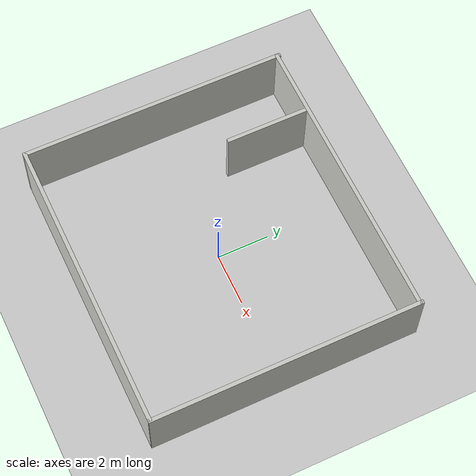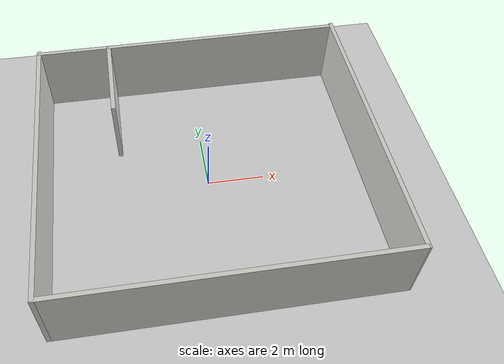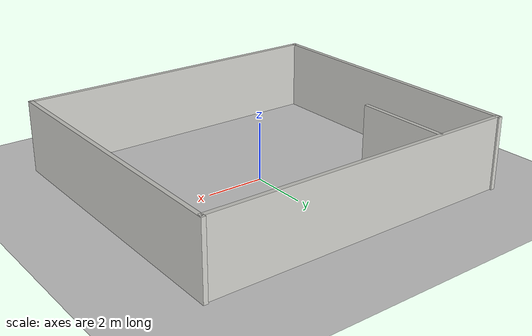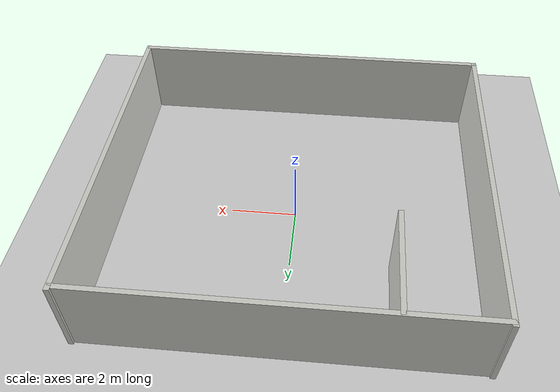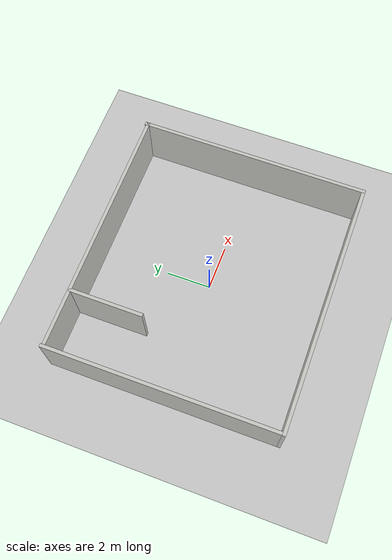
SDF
<sdf version="1.6">
 <world name="default">
  <light name="sun" type="directional">
   <pose>0 0 10 0 -0 0</pose>
   <diffuse>0.8 0.8 0.8 1</diffuse>
   <specular>0.1 0.1 0.1 1</specular>
   <attenuation>
    <range>1000</range>
    <constant>0.9</constant>
    <linear>0.01</linear>
    <quadratic>0.001</quadratic>
   </attenuation>
   <direction>-0.5 0.5 -1</direction>
  </light>
  <model name="ground_plane">
   <static>1</static>
   <link name="link">
    <collision name="collision">
     <geometry><plane><normal>0 0 1</normal><size>100 100</size></plane></geometry>
     <surface><friction><ode><mu>100</mu><mu2>50</mu2></ode></friction></surface>
    </collision>
    <visual name="visual">
     <cast_shadows>0</cast_shadows>
     <geometry><plane><normal>0 0 1</normal><size>100 100</size></plane></geometry>
     <material>
      <script><uri>file://media/materials/scripts/gazebo.material</uri><name>Gazebo/Grey</name></script>
     </material>
    </visual>
   </link>
  </model>
  <gravity>0 0 -9.8</gravity>
  <magnetic_field>6e-06 2.3e-05 -4.2e-05</magnetic_field>
  <atmosphere type="adiabatic"/>
  <physics name="default_physics" default="0" type="ode">
   <max_step_size>0.001</max_step_size>
   <real_time_factor>1</real_time_factor>
   <real_time_update_rate>1000</real_time_update_rate>
  </physics>
  <scene><ambient>0.4 0.4 0.4 1</ambient><background>0.7 0.7 0.7 1</background><shadows>1</shadows></scene>
  <spherical_coordinates>
   <surface_model>EARTH_WGS84</surface_model>
   <latitude_deg>0</latitude_deg>
   <longitude_deg>0</longitude_deg>
   <elevation>0</elevation>
   <heading_deg>0</heading_deg>
  </spherical_coordinates>
  <model name="plant">
   <link name="Wall_2">
    <pose>0 -5.0615 0 0 -0 3.14159</pose>
    <visual name="Wall_2_Visual">
     <pose>0 0 1.25 0 -0 0</pose>
     <geometry><box><size>11.227 0.15 2.5</size></box></geometry>
     <material>
      <script><uri>file://media/materials/scripts/gazebo.material</uri><name>Gazebo/CeilingTiled</name></script>
      <ambient>1 1 1 1</ambient>
      <diffuse>1 1 1 1</diffuse>
      <specular>0 0 0 1</specular>
      <emissive>0 0 0 1</emissive>
     </material>
    </visual>
    <collision name="Wall_2_Collision">
     <pose>0 0 1.25 0 -0 0</pose>
     <geometry><box><size>11.227 0.15 2.5</size></box></geometry>
     <surface>
      <friction>
       <ode><mu>1</mu><mu2>1</mu2><fdir1>0 0 0</fdir1><slip1>0</slip1><slip2>0</slip2></ode>
       <torsional>
        <coefficient>1</coefficient>
        <patch_radius>0</patch_radius>
        <surface_radius>0</surface_radius>
        <use_patch_radius>1</use_patch_radius>
        <ode><slip>0</slip></ode>
       </torsional>
      </friction>
      <bounce><restitution_coefficient>0</restitution_coefficient><threshold>1e+06</threshold></bounce>
      <contact>
       <collide_without_contact>0</collide_without_contact>
       <collide_without_contact_bitmask>1</collide_without_contact_bitmask>
       <collide_bitmask>1</collide_bitmask>
       <ode>
        <soft_cfm>0</soft_cfm>
        <soft_erp>0.2</soft_erp>
        <kp>1e+13</kp>
        <kd>1</kd>
        <max_vel>0.01</max_vel>
        <min_depth>0</min_depth>
       </ode>
       <bullet>
        <split_impulse>1</split_impulse>
        <split_impulse_penetration_threshold>-0.01</split_impulse_penetration_threshold>
        <soft_cfm>0</soft_cfm>
        <soft_erp>0.2</soft_erp>
        <kp>1e+13</kp>
        <kd>1</kd>
       </bullet>
      </contact>
     </surface>
    </collision>
   </link>
   <link name="Wall_2_clone">
    <pose>0.0225 5.0055 0 0 -0 3.14159</pose>
    <visual name="Wall_2_Visual">
     <pose>0 0 1.25 0 -0 0</pose>
     <geometry><box><size>11.227 0.15 2.5</size></box></geometry>
     <material>
      <script><uri>file://media/materials/scripts/gazebo.material</uri><name>Gazebo/CeilingTiled</name></script>
      <ambient>1 1 1 1</ambient>
      <diffuse>1 1 1 1</diffuse>
      <specular>0 0 0 1</specular>
      <emissive>0 0 0 1</emissive>
      <shader type="pixel"/>
     </material>
    </visual>
    <collision name="Wall_2_Collision">
     <pose>0 0 1.25 0 -0 0</pose>
     <geometry><box><size>11.227 0.15 2.5</size></box></geometry>
     <surface>
      <friction>
       <ode><mu>1</mu><mu2>1</mu2><fdir1>0 0 0</fdir1><slip1>0</slip1><slip2>0</slip2></ode>
       <torsional>
        <coefficient>1</coefficient>
        <patch_radius>0</patch_radius>
        <surface_radius>0</surface_radius>
        <use_patch_radius>1</use_patch_radius>
        <ode><slip>0</slip></ode>
       </torsional>
      </friction>
      <bounce><restitution_coefficient>0</restitution_coefficient><threshold>1e+06</threshold></bounce>
      <contact>
       <collide_without_contact>0</collide_without_contact>
       <collide_without_contact_bitmask>1</collide_without_contact_bitmask>
       <collide_bitmask>1</collide_bitmask>
       <ode>
        <soft_cfm>0</soft_cfm>
        <soft_erp>0.2</soft_erp>
        <kp>1e+13</kp>
        <kd>1</kd>
        <max_vel>0.01</max_vel>
        <min_depth>0</min_depth>
       </ode>
       <bullet>
        <split_impulse>1</split_impulse>
        <split_impulse_penetration_threshold>-0.01</split_impulse_penetration_threshold>
        <soft_cfm>0</soft_cfm>
        <soft_erp>0.2</soft_erp>
        <kp>1e+13</kp>
        <kd>1</kd>
       </bullet>
      </contact>
     </surface>
    </collision>
   </link>
   <link name="Wall_3">
    <pose>-5.5385 0 0 0 -0 1.5708</pose>
    <visual name="Wall_3_Visual">
     <pose>0 0 1.25 0 -0 0</pose>
     <geometry><box><size>10.273 0.15 2.5</size></box></geometry>
     <material>
      <script><uri>file://media/materials/scripts/gazebo.material</uri><name>Gazebo/CeilingTiled</name></script>
      <ambient>1 1 1 1</ambient>
      <diffuse>1 1 1 1</diffuse>
      <specular>0 0 0 1</specular>
      <emissive>0 0 0 1</emissive>
     </material>
    </visual>
    <collision name="Wall_3_Collision">
     <pose>0 0 1.25 0 -0 0</pose>
     <geometry><box><size>10.273 0.15 2.5</size></box></geometry>
     <surface>
      <friction>
       <ode><mu>1</mu><mu2>1</mu2><fdir1>0 0 0</fdir1><slip1>0</slip1><slip2>0</slip2></ode>
       <torsional>
        <coefficient>1</coefficient>
        <patch_radius>0</patch_radius>
        <surface_radius>0</surface_radius>
        <use_patch_radius>1</use_patch_radius>
        <ode><slip>0</slip></ode>
       </torsional>
      </friction>
      <bounce><restitution_coefficient>0</restitution_coefficient><threshold>1e+06</threshold></bounce>
      <contact>
       <collide_without_contact>0</collide_without_contact>
       <collide_without_contact_bitmask>1</collide_without_contact_bitmask>
       <collide_bitmask>1</collide_bitmask>
       <ode>
        <soft_cfm>0</soft_cfm>
        <soft_erp>0.2</soft_erp>
        <kp>1e+13</kp>
        <kd>1</kd>
        <max_vel>0.01</max_vel>
        <min_depth>0</min_depth>
       </ode>
       <bullet>
        <split_impulse>1</split_impulse>
        <split_impulse_penetration_threshold>-0.01</split_impulse_penetration_threshold>
        <soft_cfm>0</soft_cfm>
        <soft_erp>0.2</soft_erp>
        <kp>1e+13</kp>
        <kd>1</kd>
       </bullet>
      </contact>
     </surface>
    </collision>
   </link>
   <link name="Wall_3_clone">
    <pose>5.59087 0.0055 0 0 -0 1.5708</pose>
    <visual name="Wall_3_Visual">
     <pose>0 0 1.25 0 -0 0</pose>
     <geometry><box><size>10.273 0.15 2.5</size></box></geometry>
     <material>
      <script><uri>file://media/materials/scripts/gazebo.material</uri><name>Gazebo/CeilingTiled</name></script>
      <ambient>1 1 1 1</ambient>
      <diffuse>1 1 1 1</diffuse>
      <specular>0 0 0 1</specular>
      <emissive>0 0 0 1</emissive>
      <shader type="pixel"/>
     </material>
    </visual>
    <collision name="Wall_3_Collision">
     <pose>0 0 1.25 0 -0 0</pose>
     <geometry><box><size>10.273 0.15 2.5</size></box></geometry>
     <surface>
      <friction>
       <ode><mu>1</mu><mu2>1</mu2><fdir1>0 0 0</fdir1><slip1>0</slip1><slip2>0</slip2></ode>
       <torsional>
        <coefficient>1</coefficient>
        <patch_radius>0</patch_radius>
        <surface_radius>0</surface_radius>
        <use_patch_radius>1</use_patch_radius>
        <ode><slip>0</slip></ode>
       </torsional>
      </friction>
      <bounce><restitution_coefficient>0</restitution_coefficient><threshold>1e+06</threshold></bounce>
      <contact>
       <collide_without_contact>0</collide_without_contact>
       <collide_without_contact_bitmask>1</collide_without_contact_bitmask>
       <collide_bitmask>1</collide_bitmask>
       <ode>
        <soft_cfm>0</soft_cfm>
        <soft_erp>0.2</soft_erp>
        <kp>1e+13</kp>
        <kd>1</kd>
        <max_vel>0.01</max_vel>
        <min_depth>0</min_depth>
       </ode>
       <bullet>
        <split_impulse>1</split_impulse>
        <split_impulse_penetration_threshold>-0.01</split_impulse_penetration_threshold>
        <soft_cfm>0</soft_cfm>
        <soft_erp>0.2</soft_erp>
        <kp>1e+13</kp>
        <kd>1</kd>
       </bullet>
      </contact>
     </surface>
    </collision>
   </link>
   <link name="Wall_3_clone_0">
    <pose>-2.9775 6.0055 0 0 -0 1.5708</pose>
    <inertial>
     <mass>1</mass>
     <inertia><ixx>1</ixx><ixy>0</ixy><ixz>0</ixz><iyy>1</iyy><iyz>0</iyz><izz>1</izz></inertia>
    </inertial>
    <visual name="Wall_3_Visual">
     <pose>-2.6 0 1.25 0 -0 0</pose>
     <geometry><box><size>3.273 0.15 2.5</size></box></geometry>
     <material>
      <script><uri>file://media/materials/scripts/gazebo.material</uri><name>Gazebo/CeilingTiled</name></script>
      <ambient>1 1 1 1</ambient>
      <diffuse>1 1 1 1</diffuse>
      <specular>0 0 0 1</specular>
      <emissive>0 0 0 1</emissive>
      <shader type="vertex"><normal_map>__default__</normal_map></shader>
     </material>
    </visual>
    <collision name="Wall_3_Collision">
     <pose>-2.6 0 1.25 0 -0 0</pose>
     <geometry><box><size>3.273 0.15 2.5</size></box></geometry>
     <surface>
      <friction>
       <ode><mu>1</mu><mu2>1</mu2><fdir1>0 0 0</fdir1><slip1>0</slip1><slip2>0</slip2></ode>
       <torsional>
        <coefficient>1</coefficient>
        <patch_radius>0</patch_radius>
        <surface_radius>0</surface_radius>
        <use_patch_radius>1</use_patch_radius>
        <ode><slip>0</slip></ode>
       </torsional>
      </friction>
      <bounce><restitution_coefficient>0</restitution_coefficient><threshold>1e+06</threshold></bounce>
      <contact>
       <collide_without_contact>0</collide_without_contact>
       <collide_without_contact_bitmask>1</collide_without_contact_bitmask>
       <collide_bitmask>1</collide_bitmask>
       <ode>
        <soft_cfm>0</soft_cfm>
        <soft_erp>0.2</soft_erp>
        <kp>1e+13</kp>
        <kd>1</kd>
        <max_vel>0.01</max_vel>
        <min_depth>0</min_depth>
       </ode>
       <bullet>
        <split_impulse>1</split_impulse>
        <split_impulse_penetration_threshold>-0.01</split_impulse_penetration_threshold>
        <soft_cfm>0</soft_cfm>
        <soft_erp>0.2</soft_erp>
        <kp>1e+13</kp>
        <kd>1</kd>
       </bullet>
      </contact>
     </surface>
    </collision>
   </link>
   <static>1</static>
   <pose>-0.0225 -0.0055 0 0 -0 0</pose>
  </model>
 </world>
</sdf>
